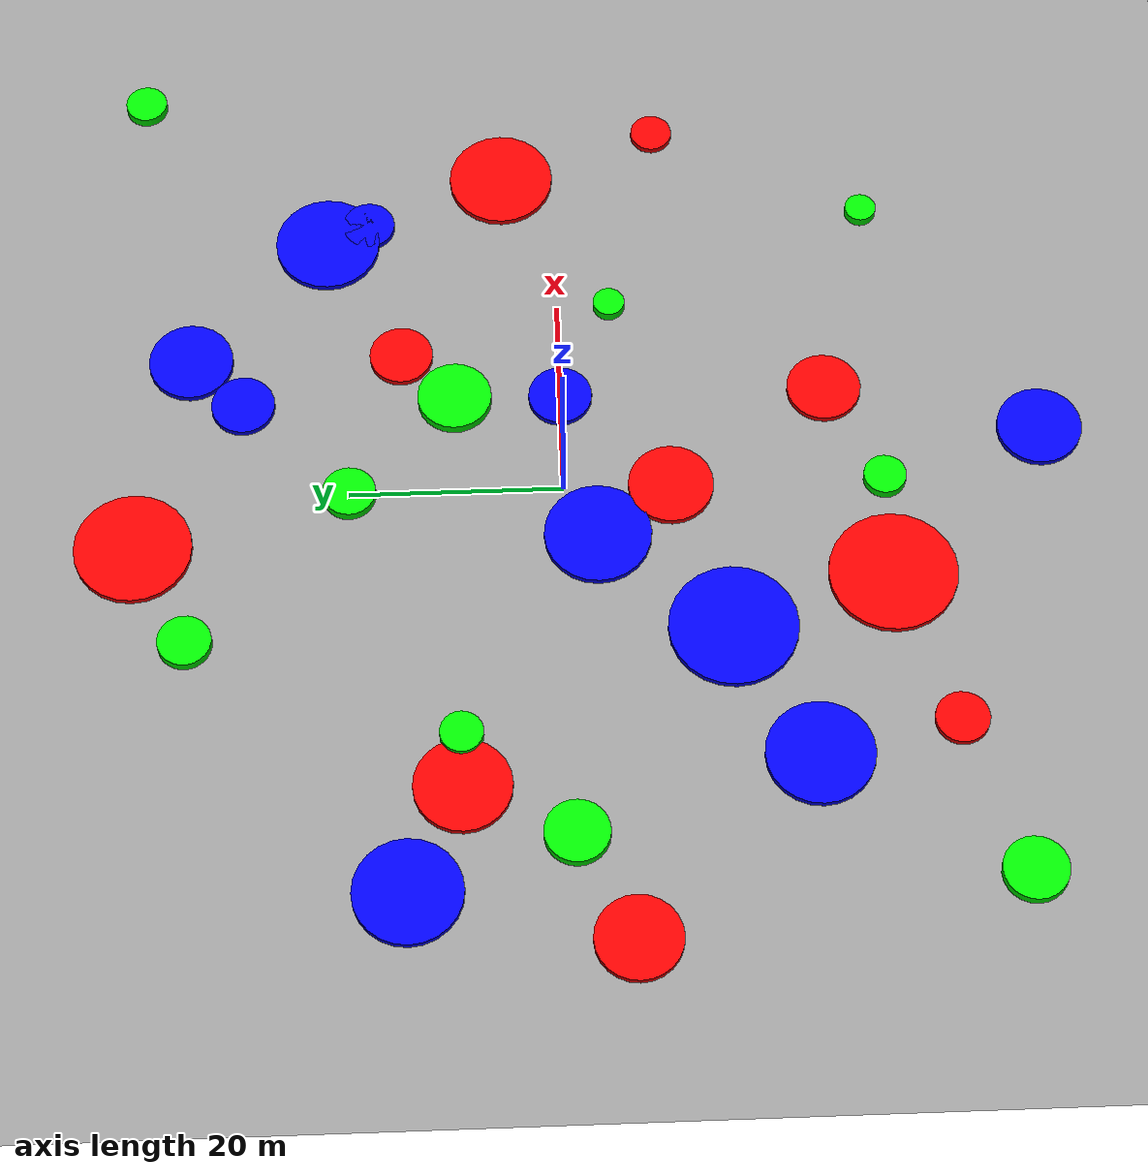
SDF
<sdf version="1.9">
 <world name="default">
  <model name="ground_plane">
   <static>true</static>
   <link name="link">
    <collision name="collision">
     <geometry><plane><normal>0 0 1</normal><size>100 100</size></plane></geometry>
     <surface><contact><collide_without_contact_bitmask>0x01</collide_without_contact_bitmask></contact></surface>
    </collision>
    <visual name="visual">
     <geometry><plane><normal>0 0 1</normal><size>100 100</size></plane></geometry>
     <material><ambient>0.6 0.6 0.6 1</ambient><diffuse>0.6 0.6 0.6 1</diffuse></material>
    </visual>
   </link>
  </model>
  <model name="moving_cylinder_6">
   <pose>15.0 35.0 0 0 0 0</pose>
   <link name="moving_link">
    <gravity>false</gravity>
    <visual name="visual">
     <geometry><cylinder><radius>4.0</radius><length>1.0</length></cylinder></geometry>
     <material><ambient>0 0 1 1</ambient></material>
    </visual>
   </link>
   <motion>
    <link_name>moving_link</link_name>
    <direction>-1 0 0</direction>
    <amplitude>40.0</amplitude>
    <speed>8.0</speed>
    <turnaround_threshold>0.5</turnaround_threshold>
   </motion>
  </model>
  <model name="moving_cylinder_7">
   <pose>-40.0 15.0 0 0 0 0</pose>
   <link name="moving_link">
    <gravity>false</gravity>
    <visual name="visual">
     <geometry><cylinder><radius>5.0</radius><length>1.0</length></cylinder></geometry>
     <material><ambient>0 0 1 1</ambient></material>
    </visual>
   </link>
   <motion>
    <link_name>moving_link</link_name>
    <direction>1 0 0</direction>
    <amplitude>40.0</amplitude>
    <speed>8.0</speed>
    <turnaround_threshold>0.5</turnaround_threshold>
   </motion>
  </model>
  <model name="moving_cylinder_8">
   <pose>5.0 -45.0 0 0 0 0</pose>
   <link name="moving_link">
    <gravity>false</gravity>
    <visual name="visual">
     <geometry><cylinder><radius>4.0</radius><length>1.0</length></cylinder></geometry>
     <material><ambient>0 0 1 1</ambient></material>
    </visual>
   </link>
   <motion>
    <link_name>moving_link</link_name>
    <direction>0 1 0</direction>
    <amplitude>40.0</amplitude>
    <speed>8.0</speed>
    <turnaround_threshold>0.5</turnaround_threshold>
   </motion>
  </model>
  <model name="moving_cylinder_9">
   <pose>-15.0 -15.0 0 0 0 0</pose>
   <link name="moving_link">
    <gravity>false</gravity>
    <visual name="visual">
     <geometry><cylinder><radius>6.0</radius><length>1.0</length></cylinder></geometry>
     <material><ambient>0 0 1 1</ambient></material>
    </visual>
   </link>
   <motion>
    <link_name>moving_link</link_name>
    <direction>1 1 0</direction>
    <amplitude>40.0</amplitude>
    <speed>8.0</speed>
    <turnaround_threshold>0.5</turnaround_threshold>
   </motion>
  </model>
  <model name="moving_cylinder_11">
   <pose>10.0 30.0 0 0 0 0</pose>
   <link name="moving_link">
    <gravity>false</gravity>
    <visual name="visual">
     <geometry><cylinder><radius>3.0</radius><length>1.0</length></cylinder></geometry>
     <material><ambient>0 0 1 1</ambient></material>
    </visual>
   </link>
   <motion>
    <link_name>moving_link</link_name>
    <direction>1 0 0</direction>
    <amplitude>40.0</amplitude>
    <speed>8.0</speed>
   </motion>
  </model>
  <model name="moving_cylinder_11_5">
   <pose>10.0 0.0 0 0 0 0</pose>
   <link name="moving_link">
    <gravity>false</gravity>
    <visual name="visual">
     <geometry><cylinder><radius>3.0</radius><length>1.0</length></cylinder></geometry>
     <material><ambient>0 0 1 1</ambient></material>
    </visual>
   </link>
   <motion>
    <link_name>moving_link</link_name>
    <direction>1 0 0</direction>
    <amplitude>40.0</amplitude>
    <speed>8.0</speed>
    <turnaround_threshold>0.5</turnaround_threshold>
   </motion>
  </model>
  <model name="moving_cylinder_12">
   <pose>-28.0 -22.0 0 0 0 0</pose>
   <link name="moving_link">
    <gravity>false</gravity>
    <visual name="visual">
     <geometry><cylinder><radius>5.0</radius><length>1.0</length></cylinder></geometry>
     <material><ambient>0 0 1 1</ambient></material>
    </visual>
   </link>
   <motion>
    <link_name>moving_link</link_name>
    <direction>0 1 0</direction>
    <amplitude>40.0</amplitude>
    <speed>8.0</speed>
    <turnaround_threshold>0.5</turnaround_threshold>
   </motion>
  </model>
  <model name="moving_cylinder_12_5">
   <pose>28.0 22.0 0 0 0 0</pose>
   <link name="moving_link">
    <gravity>false</gravity>
    <visual name="visual">
     <geometry><cylinder><radius>5.0</radius><length>1.0</length></cylinder></geometry>
     <material><ambient>0 0 1 1</ambient></material>
    </visual>
   </link>
   <motion>
    <link_name>moving_link</link_name>
    <direction>0 -1 0</direction>
    <amplitude>40.0</amplitude>
    <speed>8.0</speed>
    <turnaround_threshold>0.5</turnaround_threshold>
   </motion>
  </model>
  <model name="moving_cylinder_12_6">
   <pose>-5.0 -3.0 0 0 0 0</pose>
   <link name="moving_link">
    <gravity>false</gravity>
    <visual name="visual">
     <geometry><cylinder><radius>5.0</radius><length>1.0</length></cylinder></geometry>
     <material><ambient>0 0 1 1</ambient></material>
    </visual>
   </link>
   <motion>
    <link_name>moving_link</link_name>
    <direction>0 -1 0</direction>
    <amplitude>40.0</amplitude>
    <speed>8.0</speed>
    <turnaround_threshold>0.5</turnaround_threshold>
   </motion>
  </model>
  <model name="moving_cylinder_13">
   <pose>30.0 18.0 0 0 0 0</pose>
   <link name="moving_link">
    <gravity>false</gravity>
    <visual name="visual">
     <geometry><cylinder><radius>2.5</radius><length>1.0</length></cylinder></geometry>
     <material><ambient>0 0 1 1</ambient></material>
    </visual>
   </link>
   <motion>
    <link_name>moving_link</link_name>
    <direction>-1 0 0</direction>
    <amplitude>40.0</amplitude>
    <speed>8.0</speed>
    <turnaround_threshold>0.5</turnaround_threshold>
   </motion>
  </model>
  <model name="moving_cylinder_14">
   <pose>10.0 -25.0 0 0 0 0</pose>
   <link name="moving_link">
    <gravity>false</gravity>
    <visual name="visual">
     <geometry><cylinder><radius>3.5</radius><length>1.0</length></cylinder></geometry>
     <material><ambient>1 0 0 1</ambient></material>
    </visual>
   </link>
   <motion>
    <link_name>moving_link</link_name>
    <direction>1 0 0</direction>
    <amplitude>40.0</amplitude>
    <speed>8.0</speed>
   </motion>
  </model>
  <model name="moving_cylinder_15">
   <pose>-30.0 10.0 0 0 0 0</pose>
   <link name="moving_link">
    <gravity>false</gravity>
    <visual name="visual">
     <geometry><cylinder><radius>4.5</radius><length>1.0</length></cylinder></geometry>
     <material><ambient>1 0 0 1</ambient></material>
    </visual>
   </link>
   <motion>
    <link_name>moving_link</link_name>
    <direction>0 1 0</direction>
    <amplitude>40.0</amplitude>
    <speed>8.0</speed>
    <turnaround_threshold>0.5</turnaround_threshold>
   </motion>
  </model>
  <model name="moving_cylinder_16">
   <pose>40.0 -10.0 0 0 0 0</pose>
   <link name="moving_link">
    <gravity>false</gravity>
    <visual name="visual">
     <geometry><cylinder><radius>2.0</radius><length>1.0</length></cylinder></geometry>
     <material><ambient>1 0 0 1</ambient></material>
    </visual>
   </link>
   <motion>
    <link_name>moving_link</link_name>
    <direction>-1 0 0</direction>
    <amplitude>40.0</amplitude>
    <speed>8.0</speed>
    <turnaround_threshold>0.5</turnaround_threshold>
   </motion>
  </model>
  <model name="moving_cylinder_17">
   <pose>-5.0 40.0 0 0 0 0</pose>
   <link name="moving_link">
    <gravity>false</gravity>
    <visual name="visual">
     <geometry><cylinder><radius>5.5</radius><length>1.0</length></cylinder></geometry>
     <material><ambient>1 0 0 1</ambient></material>
    </visual>
   </link>
   <motion>
    <link_name>moving_link</link_name>
    <direction>0 -1 0</direction>
    <amplitude>40.0</amplitude>
    <speed>8.0</speed>
    <turnaround_threshold>0.5</turnaround_threshold>
   </motion>
  </model>
  <model name="moving_cylinder_18">
   <pose>15.0 15.0 0 0 0 0</pose>
   <link name="moving_link">
    <gravity>false</gravity>
    <visual name="visual">
     <geometry><cylinder><radius>3.0</radius><length>1.0</length></cylinder></geometry>
     <material><ambient>1 0 0 1</ambient></material>
    </visual>
   </link>
   <motion>
    <link_name>moving_link</link_name>
    <direction>0.707 0.707 0</direction>
    <amplitude>40.0</amplitude>
    <speed>8.0</speed>
    <turnaround_threshold>0.5</turnaround_threshold>
   </motion>
  </model>
  <model name="moving_cylinder_19">
   <pose>-45.0 -5.0 0 0 0 0</pose>
   <link name="moving_link">
    <gravity>false</gravity>
    <visual name="visual">
     <geometry><cylinder><radius>4.0</radius><length>1.0</length></cylinder></geometry>
     <material><ambient>1 0 0 1</ambient></material>
    </visual>
   </link>
   <motion>
    <link_name>moving_link</link_name>
    <direction>1 0 0</direction>
    <amplitude>40.0</amplitude>
    <speed>8.0</speed>
    <turnaround_threshold>0.5</turnaround_threshold>
   </motion>
  </model>
  <model name="moving_cylinder_20">
   <pose>-10.0 -30.0 0 0 0 0</pose>
   <link name="moving_link">
    <gravity>false</gravity>
    <visual name="visual">
     <geometry><cylinder><radius>6.0</radius><length>1.0</length></cylinder></geometry>
     <material><ambient>1 0 0 1</ambient></material>
    </visual>
   </link>
   <motion>
    <link_name>moving_link</link_name>
    <direction>-0.707 0.707 0</direction>
    <amplitude>40.0</amplitude>
    <speed>8.0</speed>
    <turnaround_threshold>0.5</turnaround_threshold>
   </motion>
  </model>
  <model name="moving_cylinder_21">
   <pose>-25.0 -35.0 0 0 0 0</pose>
   <link name="moving_link">
    <gravity>false</gravity>
    <visual name="visual">
     <geometry><cylinder><radius>2.5</radius><length>1.0</length></cylinder></geometry>
     <material><ambient>1 0 0 1</ambient></material>
    </visual>
   </link>
   <motion>
    <link_name>moving_link</link_name>
    <direction>0 1 0</direction>
    <amplitude>40.0</amplitude>
    <speed>8.0</speed>
    <turnaround_threshold>0.5</turnaround_threshold>
   </motion>
  </model>
  <model name="moving_cylinder_22">
   <pose>35.0 5.0 0 0 0 0</pose>
   <link name="moving_link">
    <gravity>false</gravity>
    <visual name="visual">
     <geometry><cylinder><radius>5.0</radius><length>1.0</length></cylinder></geometry>
     <material><ambient>1 0 0 1</ambient></material>
    </visual>
   </link>
   <motion>
    <link_name>moving_link</link_name>
    <direction>0 -1 0</direction>
    <amplitude>40.0</amplitude>
    <speed>8.0</speed>
    <turnaround_threshold>0.5</turnaround_threshold>
   </motion>
  </model>
  <model name="moving_cylinder_23">
   <pose>0.0 -10.0 0 0 0 0</pose>
   <link name="moving_link">
    <gravity>false</gravity>
    <visual name="visual">
     <geometry><cylinder><radius>4.0</radius><length>1.0</length></cylinder></geometry>
     <material><ambient>1 0 0 1</ambient></material>
    </visual>
   </link>
   <motion>
    <link_name>moving_link</link_name>
    <direction>-0.707 -0.707 0</direction>
    <amplitude>40.0</amplitude>
    <speed>8.0</speed>
    <turnaround_threshold>0.5</turnaround_threshold>
   </motion>
  </model>
  <model name="static_cylinder_1">
   <static>true</static>
   <pose>-25 10 0.5 0 0 0.785</pose>
   <link name="link">
    <collision name="collision">
     <geometry><cylinder><radius>2.0</radius><length>1.0</length></cylinder></geometry>
    </collision>
    <visual name="visual">
     <geometry><cylinder><radius>2.0</radius><length>1.0</length></cylinder></geometry>
     <material><ambient>0 1 0 1</ambient><diffuse>0 1 0 1</diffuse></material>
    </visual>
   </link>
  </model>
  <model name="static_cylinder_2">
   <static>true</static>
   <pose>30 -30 0.5 0 0 0.2</pose>
   <link name="link">
    <collision name="collision">
     <geometry><cylinder><radius>1.5</radius><length>1.0</length></cylinder></geometry>
    </collision>
    <visual name="visual">
     <geometry><cylinder><radius>1.5</radius><length>1.0</length></cylinder></geometry>
     <material><ambient>0 1 0 1</ambient><diffuse>0 1 0 1</diffuse></material>
    </visual>
   </link>
  </model>
  <model name="static_cylinder_3">
   <static>true</static>
   <pose>0 20 0.5 0 0 -0.5</pose>
   <link name="link">
    <collision name="collision">
     <geometry><cylinder><radius>2.5</radius><length>1.0</length></cylinder></geometry>
    </collision>
    <visual name="visual">
     <geometry><cylinder><radius>2.5</radius><length>1.0</length></cylinder></geometry>
     <material><ambient>0 1 0 1</ambient><diffuse>0 1 0 1</diffuse></material>
    </visual>
   </link>
  </model>
  <model name="static_cylinder_4">
   <static>true</static>
   <pose>-40 -40 0.5 0 0 1.57</pose>
   <link name="link">
    <collision name="collision">
     <geometry><cylinder><radius>3.0</radius><length>1.0</length></cylinder></geometry>
    </collision>
    <visual name="visual">
     <geometry><cylinder><radius>3.0</radius><length>1.0</length></cylinder></geometry>
     <material><ambient>0 1 0 1</ambient><diffuse>0 1 0 1</diffuse></material>
    </visual>
   </link>
  </model>
  <model name="static_cylinder_5">
   <static>true</static>
   <pose>45 40 0.5 0 0 0</pose>
   <link name="link">
    <collision name="collision">
     <geometry><cylinder><radius>2.0</radius><length>1.0</length></cylinder></geometry>
    </collision>
    <visual name="visual">
     <geometry><cylinder><radius>2.0</radius><length>1.0</length></cylinder></geometry>
     <material><ambient>0 1 0 1</ambient><diffuse>0 1 0 1</diffuse></material>
    </visual>
   </link>
  </model>
  <model name="static_cylinder_6">
   <static>true</static>
   <pose>10 10 0.5 0 0 -1.1</pose>
   <link name="link">
    <collision name="collision">
     <geometry><cylinder><radius>3.5</radius><length>1.0</length></cylinder></geometry>
    </collision>
    <visual name="visual">
     <geometry><cylinder><radius>3.5</radius><length>1.0</length></cylinder></geometry>
     <material><ambient>0 1 0 1</ambient><diffuse>0 1 0 1</diffuse></material>
    </visual>
   </link>
  </model>
  <model name="static_cylinder_7">
   <static>true</static>
   <pose>-15 35 0.5 0 0 0.4</pose>
   <link name="link">
    <collision name="collision">
     <geometry><cylinder><radius>2.5</radius><length>1.0</length></cylinder></geometry>
    </collision>
    <visual name="visual">
     <geometry><cylinder><radius>2.5</radius><length>1.0</length></cylinder></geometry>
     <material><ambient>0 1 0 1</ambient><diffuse>0 1 0 1</diffuse></material>
    </visual>
   </link>
  </model>
  <model name="static_cylinder_8">
   <static>true</static>
   <pose>20 -5 0.5 0 0 0</pose>
   <link name="link">
    <collision name="collision">
     <geometry><cylinder><radius>1.5</radius><length>1.0</length></cylinder></geometry>
    </collision>
    <visual name="visual">
     <geometry><cylinder><radius>1.5</radius><length>1.0</length></cylinder></geometry>
     <material><ambient>0 1 0 1</ambient><diffuse>0 1 0 1</diffuse></material>
    </visual>
   </link>
  </model>
  <model name="static_cylinder_9">
   <static>true</static>
   <pose>-35 0 0.5 0 0 1.0</pose>
   <link name="link">
    <collision name="collision">
     <geometry><cylinder><radius>3.0</radius><length>1.0</length></cylinder></geometry>
    </collision>
    <visual name="visual">
     <geometry><cylinder><radius>3.0</radius><length>1.0</length></cylinder></geometry>
     <material><ambient>0 1 0 1</ambient><diffuse>0 1 0 1</diffuse></material>
    </visual>
   </link>
  </model>
  <model name="static_cylinder_10">
   <static>true</static>
   <pose>0 -30 0.5 0 0 -0.8</pose>
   <link name="link">
    <collision name="collision">
     <geometry><cylinder><radius>2.0</radius><length>1.0</length></cylinder></geometry>
    </collision>
    <visual name="visual">
     <geometry><cylinder><radius>2.0</radius><length>1.0</length></cylinder></geometry>
     <material><ambient>0 1 0 1</ambient><diffuse>0 1 0 1</diffuse></material>
    </visual>
   </link>
  </model>
 </world>
</sdf>
